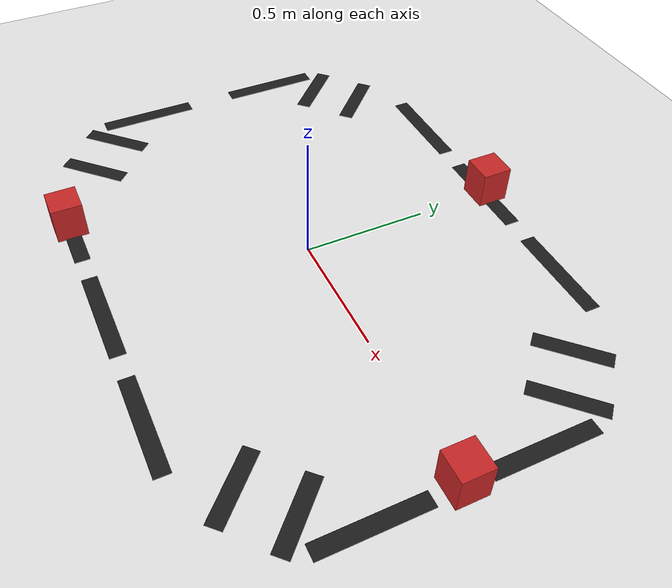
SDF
<?xml version="1.0" ?>
<sdf version="1.6">
  <world name="line_track_world">

    <!-- ── Physics ──────────────────────────────────────────────── -->
    <physics type="ode">
      <real_time_update_rate>500</real_time_update_rate>
      <max_step_size>0.002</max_step_size>
      <real_time_factor>1</real_time_factor>
    </physics>

    <!-- ── Sun / Lighting ────────────────────────────────────────── -->
    <include>
      <uri>model://sun</uri>
    </include>

    <!-- Brighter ambient so camera sees line clearly -->
    <scene>
      <ambient>0.8 0.8 0.8 1</ambient>
      <background>0.5 0.5 0.5 1</background>
      <shadows>false</shadows>
    </scene>

    <!-- ── White Ground Plane ────────────────────────────────────── -->
    <model name="ground_plane">
      <static>true</static>
      <link name="link">
        <collision name="collision">
          <geometry>
            <plane>
              <normal>0 0 1</normal>
              <size>10 10</size>
            </plane>
          </geometry>
          <surface>
            <friction><ode><mu>100</mu><mu2>50</mu2></ode></friction>
          </surface>
        </collision>
        <visual name="visual">
          <cast_shadows>false</cast_shadows>
          <geometry>
            <plane>
              <normal>0 0 1</normal>
              <size>10 10</size>
            </plane>
          </geometry>
          <material>
            <script>
              <uri>file://media/materials/scripts/gazebo.material</uri>
              <name>Gazebo/White</name>
            </script>
          </material>
        </visual>
      </link>
    </model>

    <!-- ── STRAIGHT SECTIONS ──────────────────────────────────────── -->

    <!-- Bottom straight (robot starts here, facing +X) -->
    <model name="line_bottom_1">
      <static>true</static>
      <pose>-0.5 -0.8 0.001 0 0 0</pose>
      <link name="link">
        <visual name="v"><geometry><box><size>0.4 0.06 0.002</size></box></geometry>
          <material><script><name>Gazebo/Black</name></script></material></visual>
        <collision name="c"><geometry><box><size>0.4 0.06 0.002</size></box></geometry></collision>
      </link>
    </model>
    <model name="line_bottom_2">
      <static>true</static>
      <pose>0.0 -0.8 0.001 0 0 0</pose>
      <link name="link">
        <visual name="v"><geometry><box><size>0.4 0.06 0.002</size></box></geometry>
          <material><script><name>Gazebo/Black</name></script></material></visual>
        <collision name="c"><geometry><box><size>0.4 0.06 0.002</size></box></geometry></collision>
      </link>
    </model>
    <model name="line_bottom_3">
      <static>true</static>
      <pose>0.5 -0.8 0.001 0 0 0</pose>
      <link name="link">
        <visual name="v"><geometry><box><size>0.4 0.06 0.002</size></box></geometry>
          <material><script><name>Gazebo/Black</name></script></material></visual>
        <collision name="c"><geometry><box><size>0.4 0.06 0.002</size></box></geometry></collision>
      </link>
    </model>

    <!-- Top straight -->
    <model name="line_top_1">
      <static>true</static>
      <pose>-0.5 0.8 0.001 0 0 0</pose>
      <link name="link">
        <visual name="v"><geometry><box><size>0.4 0.06 0.002</size></box></geometry>
          <material><script><name>Gazebo/Black</name></script></material></visual>
        <collision name="c"><geometry><box><size>0.4 0.06 0.002</size></box></geometry></collision>
      </link>
    </model>
    <model name="line_top_2">
      <static>true</static>
      <pose>0.0 0.8 0.001 0 0 0</pose>
      <link name="link">
        <visual name="v"><geometry><box><size>0.4 0.06 0.002</size></box></geometry>
          <material><script><name>Gazebo/Black</name></script></material></visual>
        <collision name="c"><geometry><box><size>0.4 0.06 0.002</size></box></geometry></collision>
      </link>
    </model>
    <model name="line_top_3">
      <static>true</static>
      <pose>0.5 0.8 0.001 0 0 0</pose>
      <link name="link">
        <visual name="v"><geometry><box><size>0.4 0.06 0.002</size></box></geometry>
          <material><script><name>Gazebo/Black</name></script></material></visual>
        <collision name="c"><geometry><box><size>0.4 0.06 0.002</size></box></geometry></collision>
      </link>
    </model>

    <!-- Left vertical straight -->
    <model name="line_left_1">
      <static>true</static>
      <pose>-1.1 -0.3 0.001 0 0 1.5708</pose>
      <link name="link">
        <visual name="v"><geometry><box><size>0.4 0.06 0.002</size></box></geometry>
          <material><script><name>Gazebo/Black</name></script></material></visual>
        <collision name="c"><geometry><box><size>0.4 0.06 0.002</size></box></geometry></collision>
      </link>
    </model>
    <model name="line_left_2">
      <static>true</static>
      <pose>-1.1 0.3 0.001 0 0 1.5708</pose>
      <link name="link">
        <visual name="v"><geometry><box><size>0.4 0.06 0.002</size></box></geometry>
          <material><script><name>Gazebo/Black</name></script></material></visual>
        <collision name="c"><geometry><box><size>0.4 0.06 0.002</size></box></geometry></collision>
      </link>
    </model>

    <!-- Right vertical straight -->
    <model name="line_right_1">
      <static>true</static>
      <pose>1.1 -0.3 0.001 0 0 1.5708</pose>
      <link name="link">
        <visual name="v"><geometry><box><size>0.4 0.06 0.002</size></box></geometry>
          <material><script><name>Gazebo/Black</name></script></material></visual>
        <collision name="c"><geometry><box><size>0.4 0.06 0.002</size></box></geometry></collision>
      </link>
    </model>
    <model name="line_right_2">
      <static>true</static>
      <pose>1.1 0.3 0.001 0 0 1.5708</pose>
      <link name="link">
        <visual name="v"><geometry><box><size>0.4 0.06 0.002</size></box></geometry>
          <material><script><name>Gazebo/Black</name></script></material></visual>
        <collision name="c"><geometry><box><size>0.4 0.06 0.002</size></box></geometry></collision>
      </link>
    </model>

    <!-- ── CORNER PIECES (45° diagonal) ──────────────────────────── -->
    <!-- Bottom-left corner -->
    <model name="corner_bl_1">
      <static>true</static>
      <pose>-0.82 -0.62 0.001 0 0 0.7854</pose>
      <link name="link">
        <visual name="v"><geometry><box><size>0.28 0.06 0.002</size></box></geometry>
          <material><script><name>Gazebo/Black</name></script></material></visual>
        <collision name="c"><geometry><box><size>0.28 0.06 0.002</size></box></geometry></collision>
      </link>
    </model>
    <model name="corner_bl_2">
      <static>true</static>
      <pose>-0.98 -0.48 0.001 0 0 0.7854</pose>
      <link name="link">
        <visual name="v"><geometry><box><size>0.28 0.06 0.002</size></box></geometry>
          <material><script><name>Gazebo/Black</name></script></material></visual>
        <collision name="c"><geometry><box><size>0.28 0.06 0.002</size></box></geometry></collision>
      </link>
    </model>

    <!-- Bottom-right corner -->
    <model name="corner_br_1">
      <static>true</static>
      <pose>0.82 -0.62 0.001 0 0 -0.7854</pose>
      <link name="link">
        <visual name="v"><geometry><box><size>0.28 0.06 0.002</size></box></geometry>
          <material><script><name>Gazebo/Black</name></script></material></visual>
        <collision name="c"><geometry><box><size>0.28 0.06 0.002</size></box></geometry></collision>
      </link>
    </model>
    <model name="corner_br_2">
      <static>true</static>
      <pose>0.98 -0.48 0.001 0 0 -0.7854</pose>
      <link name="link">
        <visual name="v"><geometry><box><size>0.28 0.06 0.002</size></box></geometry>
          <material><script><name>Gazebo/Black</name></script></material></visual>
        <collision name="c"><geometry><box><size>0.28 0.06 0.002</size></box></geometry></collision>
      </link>
    </model>

    <!-- Top-left corner -->
    <model name="corner_tl_1">
      <static>true</static>
      <pose>-0.82 0.62 0.001 0 0 -0.7854</pose>
      <link name="link">
        <visual name="v"><geometry><box><size>0.28 0.06 0.002</size></box></geometry>
          <material><script><name>Gazebo/Black</name></script></material></visual>
        <collision name="c"><geometry><box><size>0.28 0.06 0.002</size></box></geometry></collision>
      </link>
    </model>
    <model name="corner_tl_2">
      <static>true</static>
      <pose>-0.98 0.48 0.001 0 0 -0.7854</pose>
      <link name="link">
        <visual name="v"><geometry><box><size>0.28 0.06 0.002</size></box></geometry>
          <material><script><name>Gazebo/Black</name></script></material></visual>
        <collision name="c"><geometry><box><size>0.28 0.06 0.002</size></box></geometry></collision>
      </link>
    </model>

    <!-- Top-right corner -->
    <model name="corner_tr_1">
      <static>true</static>
      <pose>0.82 0.62 0.001 0 0 0.7854</pose>
      <link name="link">
        <visual name="v"><geometry><box><size>0.28 0.06 0.002</size></box></geometry>
          <material><script><name>Gazebo/Black</name></script></material></visual>
        <collision name="c"><geometry><box><size>0.28 0.06 0.002</size></box></geometry></collision>
      </link>
    </model>
    <model name="corner_tr_2">
      <static>true</static>
      <pose>0.98 0.48 0.001 0 0 0.7854</pose>
      <link name="link">
        <visual name="v"><geometry><box><size>0.28 0.06 0.002</size></box></geometry>
          <material><script><name>Gazebo/Black</name></script></material></visual>
        <collision name="c"><geometry><box><size>0.28 0.06 0.002</size></box></geometry></collision>
      </link>
    </model>

    <!-- ════════════════════════════════════════════════════════════
         OBSTACLES  — red boxes sitting ON the track
    ═════════════════════════════════════════════════════════════ -->
    <model name="obstacle_1">
      <static>true</static>
      <pose>0.0 0.8 0.075 0 0 0</pose>
      <link name="link">
        <visual name="v">
          <geometry><box><size>0.12 0.12 0.15</size></box></geometry>
          <material><script><name>Gazebo/Red</name></script></material>
        </visual>
        <collision name="c"><geometry><box><size>0.12 0.12 0.15</size></box></geometry></collision>
      </link>
    </model>

    <model name="obstacle_2">
      <static>true</static>
      <pose>1.1 0.0 0.075 0 0 0</pose>
      <link name="link">
        <visual name="v">
          <geometry><box><size>0.12 0.12 0.15</size></box></geometry>
          <material><script><name>Gazebo/Red</name></script></material>
        </visual>
        <collision name="c"><geometry><box><size>0.12 0.12 0.15</size></box></geometry></collision>
      </link>
    </model>

    <model name="obstacle_3">
      <static>true</static>
      <pose>-0.5 -0.8 0.075 0 0 0</pose>
      <link name="link">
        <visual name="v">
          <geometry><box><size>0.12 0.12 0.15</size></box></geometry>
          <material><script><name>Gazebo/Red</name></script></material>
        </visual>
        <collision name="c"><geometry><box><size>0.12 0.12 0.15</size></box></geometry></collision>
      </link>
    </model>

  </world>
</sdf>
